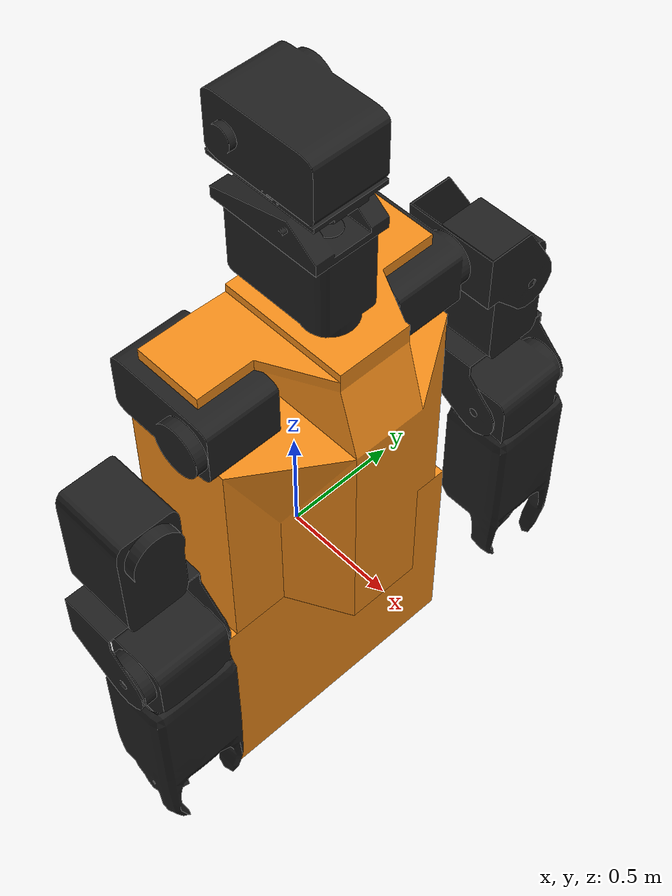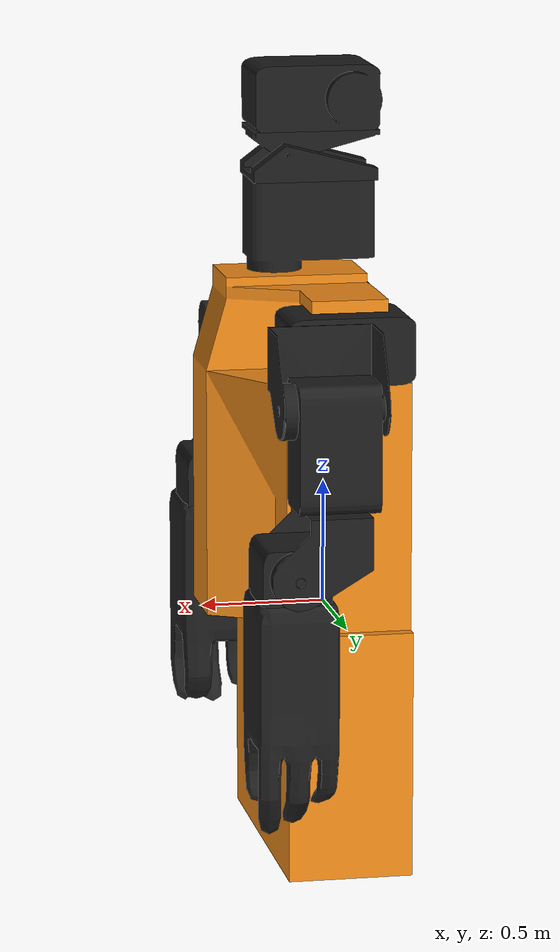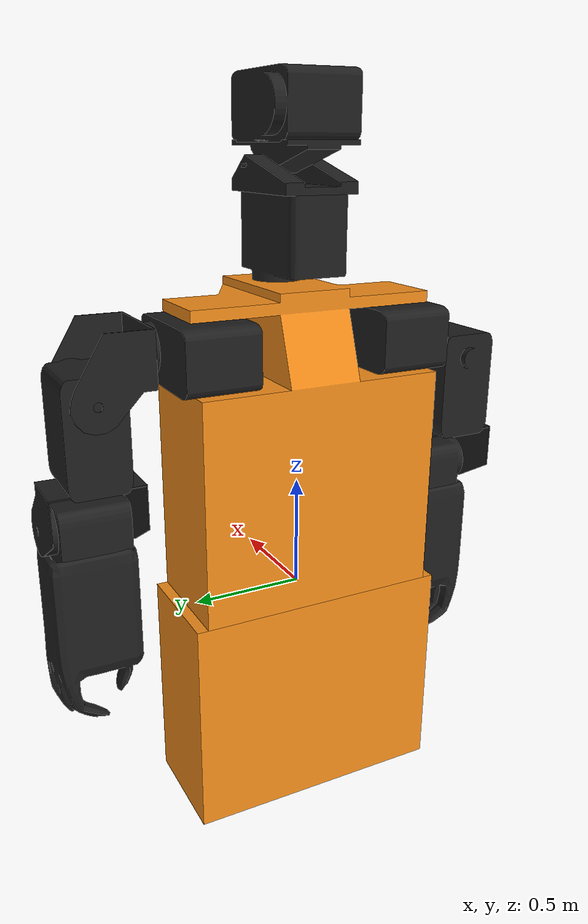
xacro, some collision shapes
<?xml version="1.0"?>
<robot name="timmy2" xmlns:xacro="http://www.ros.org/wiki/xacro">
    <xacro:property name="mass" value="0.2" />
    <xacro:property name="bracket_mass" value="0.01" />
    <xacro:property name="ax12_width" value="0.27" />
    <xacro:property name="ax12_height" value="0.5" />
    <xacro:property name="ax12_depth" value="0.4" />
    <xacro:property name="axeleft_offset" value="0.25" /> <!-- Space btw top of beam and the each joint -->
    <xacro:property name="width" value="0.1" /> <!-- Square dimensions (widthxwidth) of beams -->
    <xacro:property name="height1" value="2" /> <!-- Link 1 -->
    <xacro:property name="height2" value="1" /> <!-- Link 2 -->
    <xacro:property name="height3" value="1" /> <!-- Link 3 -->
    <xacro:property name="base_height" value="1.0" />
    <xacro:property name="package_name" value="timmy2_description" />
    <xacro:property name="mesh_dir" value="meshes2" />
    <xacro:property name="torso_origin">
        <origin xyz="0 0 ${base_height/2}" rpy="0 0 0"/>
    </xacro:property>
    <xacro:property name="link2_origin">
        <origin xyz="0 0 ${ax12_height/2 - axeleft_offset}" rpy="0 0 0"/>
    </xacro:property>
    <xacro:property name="link3_origin">
        <origin xyz="0 0 ${ax12_height/2 - axeleft_offset}" rpy="0 0 0"/>
    </xacro:property>
    <xacro:property name="base_box">
        <box size="0.5 1.2 ${base_height}"/>
    </xacro:property>
    <xacro:property name="base_origin">
        <origin xyz="0 0 -${base_height/2}" rpy="0 0 0"/>
    </xacro:property>
    <xacro:property name="ax12_block">
        <box size="${ax12_width} ${ax12_depth} ${ax12_height}"/>
    </xacro:property>
    <xacro:property name="ax12_block_collision">
        <box size="${ax12_width} ${ax12_depth} ${ax12_height}"/>
    </xacro:property>
    <xacro:property name="left_sho_pitch_block_origin">
        <origin xyz="0 0.45 0.14" rpy="0 0 0"/>
    </xacro:property>
    <xacro:property name="left_sho_pitch_block_collision_origin">
        <origin xyz="0 0.46 0.14" rpy="0 1.5708 0"/>
    </xacro:property>
    <xacro:property name="left_sho_pitch_joint_origin">
        <origin xyz="0.14 0.655 0.14" rpy="0 0 0"/>
    </xacro:property>
    <xacro:property name="left_sho_pitch_bracket_origin">
        <origin xyz="0 0.245 0" rpy="0 0 0"/>
    </xacro:property>
    <xacro:property name="left_sho_roll_joint_origin">
        <origin xyz="0 0.254 -0.161" rpy="0 0 0"/>
    </xacro:property>
    <xacro:property name="left_sho_roll_block_origin">
        <origin xyz="-0.01 0 -0.14" rpy="0 0 0"/>
    </xacro:property>
    <xacro:property name="left_sho_roll_block_collision_origin">
        <origin xyz="0 0 -0.14" rpy="0 0 1.5708"/>
    </xacro:property>
    <xacro:property name="left_elbow_bracket_joint_origin">
        <origin xyz="0 0 -0.22" rpy="0 0 0"/>
    </xacro:property>
    <xacro:property name="left_elbow_bracket_origin">
        <origin xyz="0 0 -0.4" rpy="0 0 0"/>
    </xacro:property>
    <xacro:property name="left_elbow_joint_origin">
        <origin xyz="0.1599 0 -0.4085" rpy="0 0 0"/>
    </xacro:property>
    <xacro:property name="left_elbow_block_origin">
        <origin xyz="0 -0.0168 -0.14" rpy="0 0 0"/>
    </xacro:property>
    <xacro:property name="left_hand_origin">
        <origin xyz="0 0 -0.4" rpy="0 0 0"/>
    </xacro:property>
    <xacro:property name="left_hand_collision_origin">
        <origin xyz="0 0 -0.55" rpy="0 0 0"/>
    </xacro:property>

    <!-- Right Arm -->
    <xacro:property name="right_sho_pitch_block_origin">
        <origin xyz="0 -0.44 0.14" rpy="0 0 0"/>
    </xacro:property>
    <xacro:property name="right_sho_pitch_block_collision_origin">
        <origin xyz="0 -0.45 0.14" rpy="0 1.5708 0"/>
    </xacro:property>
    <xacro:property name="right_sho_pitch_joint_origin">
        <origin xyz="0.14 -0.655 0.14" rpy="0 0 0"/>
    </xacro:property>
    <xacro:property name="right_sho_pitch_bracket_origin">
        <origin xyz="0 -0.245 0" rpy="0 0 0"/>
    </xacro:property>
    <xacro:property name="right_sho_roll_joint_origin">
        <origin xyz="0 -0.254 -0.161" rpy="0 0 0"/>
    </xacro:property>
    <xacro:property name="right_sho_roll_block_origin">
        <origin xyz="-0.01 0 -0.14" rpy="0 0 0"/>
    </xacro:property>
    <xacro:property name="right_sho_roll_block_collision_origin">
        <origin xyz="0 0 -0.14" rpy="0 0 1.5708"/>
    </xacro:property>
    <xacro:property name="right_elbow_bracket_joint_origin">
        <origin xyz="0 0 -0.22" rpy="0 0 0"/>
    </xacro:property>
    <xacro:property name="right_elbow_bracket_origin">
        <origin xyz="0 0 -0.4" rpy="0 0 0"/>
    </xacro:property>
    <xacro:property name="right_elbow_joint_origin">
        <origin xyz="0.1599 0 -0.4085" rpy="0 0 0"/>
    </xacro:property>
    <xacro:property name="right_elbow_block_origin">
        <origin xyz="0 0.0168 -0.14" rpy="0 0 0"/>
    </xacro:property>
    <xacro:property name="right_hand_origin">
        <origin xyz="0 0 -0.4" rpy="0 0 0"/>
    </xacro:property>
    <xacro:property name="right_hand_collision_origin">
        <origin xyz="0 0 -0.55" rpy="0 0 0"/>
    </xacro:property>

    <!-- Neck/Head -->
    <xacro:property name="neck_pan_joint_origin">
        <origin xyz="0.2 0 0.87" rpy="0 0 0"/>
    </xacro:property>
    <xacro:property name="neck_pan_block_origin">
        <origin xyz="-0.1385 0 0.218" rpy="0 0 0"/>
    </xacro:property>
    <xacro:property name="neck_pan_top_bracket_joint_origin">
        <origin xyz="-0.14 0 0.39" rpy="0 0 0"/>
    </xacro:property>
    <xacro:property name="neck_pan_top_bracket_origin">
        <origin xyz="0 0 0" rpy="0 0 0"/>
    </xacro:property>
    <xacro:property name="neck_tilt_bottom_bracket_joint_origin">
        <origin xyz="0.113 0 0.09" rpy="0 0 0"/>
    </xacro:property>
    <xacro:property name="neck_tilt_bottom_bracket_origin">
        <origin xyz="-0.12 0 0.06" rpy="0 0 0"/>
    </xacro:property>
    <xacro:property name="head_tilt_bracket_joint_origin">
        <origin xyz="0 0 0" rpy="0 0 0"/>
    </xacro:property>
    <xacro:property name="head_tilt_block_origin">
        <origin xyz="-0.12 0 0.222" rpy="0 0 0"/>
    </xacro:property>

    <xacro:property name="bracket_collision_block">
        <box size="0.0001 0.0001 0.0001"/>
    </xacro:property>

    <xacro:property name="ax12_block_inertia">
        <inertia
            ixx="${mass/12.0*(ax12_width*ax12_width + ax12_height*ax12_height)}" ixy="0.0" ixz="0.0"
            iyy="${mass/12.0*(ax12_width*ax12_width + ax12_height*ax12_height)}" iyz="0.0"
            izz="${mass/12.0*(ax12_width*ax12_width + ax12_width*ax12_width)}"/>
    </xacro:property>

    <!-- Import Gazebo-customization stuff -->
    <xacro:include filename="$(find timmy2_description)/urdf/timmy2.gazebo" />

    <link name="world" />
    <joint name="base_fixed" type="fixed">
        <parent link="world"/>
        <child link="base"/>
    </joint>

    <link name="base">
        <collision>
            <xacro:insert_block name="base_origin"/>
            <geometry>
                <xacro:insert_block name="base_box"/>
            </geometry>
        </collision>
        <visual>
            <xacro:insert_block name="base_origin"/>
            <geometry>
                <xacro:insert_block name="base_box"/>
            </geometry>
            <material name="orange"/>
        </visual>
        <inertial>
            <xacro:insert_block name="base_origin"/>
            <mass value="${mass*2}"/>
            <inertia
                ixx="1.0" ixy="0.0" ixz="0.0"
                iyy="1.0" iyz="0.0"
                izz="1.0"/>
        </inertial>
    </link>

    <joint name="torso_fixed" type="fixed">
        <parent link="base"/>
        <child link="torso"/>
        <origin xyz="0 0 ${base_height/2}" rpy="0 0 0"/>
    </joint>

    <!-- Base Link (Torso) -->
    <link name="torso">
        <collision>
            <origin xyz="0.13 0 -0.3" rpy="0 0 0" />
            <geometry>
                <box size="0.77 1.2 2.4"/>
            </geometry>
        </collision>
        <visual>
            <xacro:insert_block name="torso_origin"/>
            <geometry>
                <mesh filename="package://${package_name}/${mesh_dir}/torso.dae"/>
            </geometry>
            <material name="orange"/>
        </visual>
        <inertial>
            <xacro:insert_block name="torso_origin"/>
            <mass value="${mass}"/>
            <xacro:insert_block name="ax12_block_inertia"/>
        </inertial>
    </link>

    <!-- end of Base Link -->
    <joint name="left_sho_block_mount" type="fixed">
        <parent link="torso"/>
        <child link="left_sho_pitch_block"/>
        <origin xyz="0 0 ${base_height/2}" rpy="0 0 0" />
    </joint>

    <!-- Middle Link -->
    <link name="left_sho_pitch_block">
        <collision>
            <xacro:insert_block name="left_sho_pitch_block_collision_origin"/>
            <geometry>
                <xacro:insert_block name="ax12_block"/>
            </geometry>
        </collision>
        <visual>
            <xacro:insert_block name="left_sho_pitch_block_origin"/>
            <geometry>
                <mesh filename="package://${package_name}/${mesh_dir}/left_sho_pitch.dae"/>
            </geometry>
            <material name="black"/>
        </visual>
        <inertial>
            <xacro:insert_block name="left_sho_pitch_block_origin"/>
            <mass value="${mass}"/>
            <xacro:insert_block name="ax12_block_inertia"/>
        </inertial>
    </link>

    <joint name="left_sho_pitch" type="continuous">
        <parent link="left_sho_pitch_block"/>
        <child link="left_sho_pitch_bracket"/>
        <origin xyz="0.14 0.65 0.14" rpy="0 0 0"/>
        <axis xyz="0 1 0"/>
        <dynamics damping="0.7"/>
    </joint>

    <!-- Left shoulder bracket -->
    <link name="left_sho_pitch_bracket">
        <collision>
            <xacro:insert_block name="left_sho_pitch_bracket_origin"/>
            <geometry>
                <xacro:insert_block name="bracket_collision_block"/>
            </geometry>
        </collision>
        <visual>
            <xacro:insert_block name="left_sho_pitch_bracket_origin"/>
            <geometry>
                <mesh filename="package://${package_name}/${mesh_dir}/left_sho_pitch_bracket.dae"/>
            </geometry>
            <material name="black"/>
        </visual>
        <inertial>
            <xacro:insert_block name="left_sho_pitch_bracket_origin"/>
            <mass value="${bracket_mass}"/>
            <xacro:insert_block name="ax12_block_inertia"/>
        </inertial>
    </link>

    <joint name="left_sho_roll" type="continuous">
        <parent link="left_sho_pitch_bracket"/>
        <child link="left_sho_roll_block"/>
        <xacro:insert_block name="left_sho_roll_joint_origin"/>
        <axis xyz="1 0 0"/>
        <dynamics damping="0.7"/>
    </joint>

    <!-- Middle Link -->
    <link name="left_sho_roll_block">
        <collision>
            <xacro:insert_block name="left_sho_roll_block_collision_origin"/>
            <geometry>
                <xacro:insert_block name="ax12_block"/>
            </geometry>
        </collision>
        <visual>
            <xacro:insert_block name="left_sho_roll_block_origin"/>
            <geometry>
                <mesh filename="package://${package_name}/${mesh_dir}/left_sho_roll.dae"/>
            </geometry>
            <material name="black"/>
        </visual>
        <inertial>
            <xacro:insert_block name="left_sho_roll_block_origin"/>
            <mass value="${mass}"/>
            <xacro:insert_block name="ax12_block_inertia"/>
        </inertial>
    </link>

    <joint name="left_elbow_bracket_joint" type="fixed">
        <parent link="left_sho_roll_block"/>
        <child link="left_elbow_bracket"/>
        <xacro:insert_block name="left_elbow_bracket_joint_origin"/>
    </joint>

    <!-- Left Elbow -->
    <link name="left_elbow_bracket">
        <collision>
            <xacro:insert_block name="left_elbow_bracket_origin"/>
            <geometry>
                <xacro:insert_block name="bracket_collision_block"/>
            </geometry>
        </collision>
        <visual>
            <xacro:insert_block name="left_elbow_bracket_origin"/>
            <geometry>
                <mesh filename="package://${package_name}/${mesh_dir}/left_elbow_bracket.dae"/>
            </geometry>
            <material name="black"/>
        </visual>
        <inertial>
            <xacro:insert_block name="left_elbow_bracket_origin"/>
            <mass value="${bracket_mass}"/>
            <xacro:insert_block name="ax12_block_inertia"/>
        </inertial>
    </link>

    <joint name="left_elbow" type="continuous">
        <parent link="left_elbow_bracket"/>
        <child link="left_elbow_block"/>
        <xacro:insert_block name="left_elbow_joint_origin"/>
        <axis xyz="0 -1 0"/>
        <dynamics damping="0.7"/>
    </joint>

    <link name="left_elbow_block">
        <collision>
            <xacro:insert_block name="left_elbow_block_origin"/>
            <geometry>
                <xacro:insert_block name="ax12_block"/>
            </geometry>
        </collision>
        <visual>
            <xacro:insert_block name="left_elbow_block_origin"/>
            <geometry>
                <mesh filename="package://${package_name}/${mesh_dir}/left_elbow_pitch.dae"/>
            </geometry>
            <material name="black"/>
        </visual>
        <inertial>
            <xacro:insert_block name="left_elbow_block_origin"/>
            <mass value="${mass}"/>
            <xacro:insert_block name="ax12_block_inertia"/>
        </inertial>
    </link>

    <joint name="left_hand_joint" type="fixed">
        <parent link="left_elbow_block"/>
        <child link="left_hand"/>
    </joint>

    <link name="left_hand">
        <collision>
            <xacro:insert_block name="left_hand_collision_origin"/>
            <geometry>
                <box size="0.4 0.4 0.95" />
            </geometry>
        </collision>
        <visual>
            <xacro:insert_block name="left_hand_origin"/>
            <geometry>
                <mesh filename="package://${package_name}/${mesh_dir}/left_hand.dae"/>
            </geometry>
            <material name="black"/>
        </visual>
        <inertial>
            <xacro:insert_block name="left_hand_origin"/>
            <mass value="${mass}"/>
            <xacro:insert_block name="ax12_block_inertia"/>
        </inertial>
    </link>

    <!-- end of Base Link -->
    <joint name="right_sho_block_mount" type="fixed">
        <parent link="torso"/>
        <child link="right_sho_pitch_block"/>
        <origin xyz="0 0 ${base_height/2}" rpy="0 0 0" />
    </joint>

    <!-- Middle Link -->
    <link name="right_sho_pitch_block">
        <collision>
            <xacro:insert_block name="right_sho_pitch_block_collision_origin"/>
            <geometry>
                <xacro:insert_block name="ax12_block"/>
            </geometry>
        </collision>
        <visual>
            <xacro:insert_block name="right_sho_pitch_block_origin"/>
            <geometry>
                <mesh filename="package://${package_name}/${mesh_dir}/right_sho_pitch.dae"/>
            </geometry>
            <material name="black"/>
        </visual>
        <inertial>
            <xacro:insert_block name="right_sho_pitch_block_origin"/>
            <mass value="${mass}"/>
            <xacro:insert_block name="ax12_block_inertia"/>
        </inertial>
    </link>

    <joint name="right_sho_pitch" type="continuous">
        <parent link="right_sho_pitch_block"/>
        <child link="right_sho_pitch_bracket"/>
        <origin xyz="0.14 -0.65 0.14" rpy="0 0 0"/>
        <axis xyz="0 -1 0"/>
        <dynamics damping="0.7"/>
    </joint>

    <!-- right shoulder bracket -->
    <link name="right_sho_pitch_bracket">
        <collision>
            <xacro:insert_block name="right_sho_pitch_bracket_origin"/>
            <geometry>
                <xacro:insert_block name="bracket_collision_block"/>
            </geometry>
        </collision>
        <visual>
            <xacro:insert_block name="right_sho_pitch_bracket_origin"/>
            <geometry>
                <mesh filename="package://${package_name}/${mesh_dir}/right_sho_pitch_bracket.dae"/>
            </geometry>
            <material name="black"/>
        </visual>
        <inertial>
            <xacro:insert_block name="right_sho_pitch_bracket_origin"/>
            <mass value="${bracket_mass}"/>
            <xacro:insert_block name="ax12_block_inertia"/>
        </inertial>
    </link>

    <joint name="right_sho_roll" type="continuous">
        <parent link="right_sho_pitch_bracket"/>
        <child link="right_sho_roll_block"/>
        <xacro:insert_block name="right_sho_roll_joint_origin"/>
        <axis xyz="1 0 0"/>
        <dynamics damping="0.7"/>
    </joint>

    <!-- Middle Link -->
    <link name="right_sho_roll_block">
        <collision>
            <xacro:insert_block name="right_sho_roll_block_collision_origin"/>
            <geometry>
                <xacro:insert_block name="ax12_block"/>
            </geometry>
        </collision>
        <visual>
            <xacro:insert_block name="right_sho_roll_block_origin"/>
            <geometry>
                <mesh filename="package://${package_name}/${mesh_dir}/right_sho_roll.dae"/>
            </geometry>
            <material name="black"/>
        </visual>
        <inertial>
            <xacro:insert_block name="right_sho_roll_block_origin"/>
            <mass value="${mass}"/>
            <xacro:insert_block name="ax12_block_inertia"/>
        </inertial>
    </link>

    <joint name="right_elbow_bracket_joint" type="fixed">
        <parent link="right_sho_roll_block"/>
        <child link="right_elbow_bracket"/>
        <xacro:insert_block name="right_elbow_bracket_joint_origin"/>
    </joint>

    <!-- right Elbow -->
    <link name="right_elbow_bracket">
        <collision>
            <xacro:insert_block name="right_elbow_bracket_origin"/>
            <geometry>
                <xacro:insert_block name="bracket_collision_block"/>
            </geometry>
        </collision>
        <visual>
            <xacro:insert_block name="right_elbow_bracket_origin"/>
            <geometry>
                <mesh filename="package://${package_name}/${mesh_dir}/right_elbow_bracket.dae"/>
            </geometry>
            <material name="black"/>
        </visual>
        <inertial>
            <xacro:insert_block name="right_elbow_bracket_origin"/>
            <mass value="${bracket_mass}"/>
            <xacro:insert_block name="ax12_block_inertia"/>
        </inertial>
    </link>
    <!-- end of Base Link -->

    <joint name="right_elbow" type="continuous">
        <parent link="right_elbow_bracket"/>
        <child link="right_elbow_block"/>
        <xacro:insert_block name="right_elbow_joint_origin"/>
        <axis xyz="0 -1 0"/>
        <dynamics damping="0.7"/>
    </joint>

    <link name="right_elbow_block">
        <collision>
            <xacro:insert_block name="right_elbow_block_origin"/>
            <geometry>
                <xacro:insert_block name="ax12_block"/>
            </geometry>
        </collision>
        <visual>
            <xacro:insert_block name="right_elbow_block_origin"/>
            <geometry>
                <mesh filename="package://${package_name}/${mesh_dir}/right_elbow_pitch_fn.dae"/>
            </geometry>
            <material name="black"/>
        </visual>
        <inertial>
            <xacro:insert_block name="right_elbow_block_origin"/>
            <mass value="${mass}"/>
            <xacro:insert_block name="ax12_block_inertia"/>
        </inertial>
    </link>

    <joint name="right_hand_joint" type="fixed">
        <parent link="right_elbow_block"/>
        <child link="right_hand"/>
    </joint>

    <link name="right_hand">
        <collision>
            <xacro:insert_block name="right_hand_collision_origin"/>
            <geometry>
                <box size="0.4 0.4 0.95" />
            </geometry>
        </collision>
        <visual>
            <xacro:insert_block name="right_hand_origin"/>
            <geometry>
                <mesh filename="package://${package_name}/${mesh_dir}/right_hand2.dae"/>
            </geometry>
            <material name="black"/>
        </visual>
        <inertial>
            <xacro:insert_block name="right_hand_origin"/>
            <mass value="${mass}"/>
            <xacro:insert_block name="ax12_block_inertia"/>
        </inertial>
    </link>
    <!-- end of Top Link -->

    <joint name="neck_pan" type="revolute">
        <parent link="torso"/>
        <child link="neck_pan_block"/>
        <xacro:insert_block name="neck_pan_joint_origin"/>
        <axis xyz="0 0 1"/>
        <dynamics damping="0.7"/>
        <limit lower="-1.6807" upper="1.6807" effort="0.5" velocity="0.7"/>
    </joint>

    <link name="neck_pan_block">
        <collision>
            <origin xyz="-0.1385 0 0.218" rpy="1.5708 0 1.5708"/>
            <geometry>
                <xacro:insert_block name="ax12_block"/>
            </geometry>
        </collision>
        <visual>
            <xacro:insert_block name="neck_pan_block_origin"/>
            <geometry>
                <mesh filename="package://${package_name}/${mesh_dir}/neck_base.dae"/>
            </geometry>
            <material name="black"/>
        </visual>
        <inertial>
            <xacro:insert_block name="neck_pan_block_origin"/>
            <mass value="${mass}"/>
            <xacro:insert_block name="ax12_block_inertia"/>
        </inertial>
    </link>

    <joint name="neck_pan_top_bracket_joint" type="fixed">
        <parent link="neck_pan_block" />
        <child link="neck_pan_top_bracket" />
        <xacro:insert_block name="neck_pan_top_bracket_joint_origin" />
    </joint>

    <link name="neck_pan_top_bracket">
        <collision>
            <origin xyz="0 0 0.0168" rpy="0 0 0" />
            <geometry>
                <box size="${ax12_height} ${ax12_depth} 0.058" />
            </geometry>
        </collision>
        <visual>
            <xacro:insert_block name="neck_pan_top_bracket_origin"/>
            <geometry>
                <mesh filename="package://${package_name}/${mesh_dir}/neck_bottom.dae"/>
            </geometry>
            <material name="black"/>
        </visual>
        <inertial>
            <xacro:insert_block name="neck_pan_top_bracket_origin"/>
            <mass value="${mass}"/>
            <xacro:insert_block name="ax12_block_inertia"/>
        </inertial>
    </link>

    <joint name="neck_tilt" type="revolute">
        <parent link="neck_pan_top_bracket" />
        <child link="neck_tilt_bottom_bracket" />
        <xacro:insert_block name="neck_tilt_bottom_bracket_joint_origin"/>
        <axis xyz="0 1 0"/>
        <dynamics damping="0.2"/>
        <limit lower="-0.2807" upper="0.5807" effort="0.5" velocity="0.7"/>
    </joint>

    <link name="neck_tilt_bottom_bracket">
        <collision>
            <origin xyz="-0.12 0 0.07" rpy="0 0 0" />
            <geometry>
                <box size="${ax12_height} ${ax12_depth} 0.05" />
            </geometry>
        </collision>
        <visual>
            <xacro:insert_block name="neck_tilt_bottom_bracket_origin"/>
            <geometry>
                <mesh filename="package://${package_name}/${mesh_dir}/head_top_bracket.dae"/>
            </geometry>
            <material name="black"/>
        </visual>
        <inertial>
            <xacro:insert_block name="neck_tilt_bottom_bracket_origin"/>
            <mass value="${mass}"/>
            <xacro:insert_block name="ax12_block_inertia"/>
        </inertial>
    </link>

    <joint name="head_tilt_bracket_joint" type="fixed">
        <parent link="neck_tilt_bottom_bracket" />
        <child link="head_tilt_block" />
        <xacro:insert_block name="head_tilt_bracket_joint_origin" />
    </joint>

    <link name="head_tilt_block">
        <collision>
            <origin xyz="-0.12 0 0.222" rpy="1.5708 1.5708 1.5708"/>
            <geometry>
                <xacro:insert_block name="ax12_block"/>
            </geometry>
        </collision>
        <visual>
            <xacro:insert_block name="head_tilt_block_origin"/>
            <geometry>
                <mesh filename="package://${package_name}/${mesh_dir}/head_tilt.dae"/>
            </geometry>
            <material name="black"/>
        </visual>
        <inertial>
            <xacro:insert_block name="head_tilt_block_origin"/>
            <mass value="${mass}"/>
            <xacro:insert_block name="ax12_block_inertia"/>
        </inertial>
    </link>

    <!-- Transmissions -->
    <transmission name="right_sho_pitch_tran">
        <type>transmission_interface/SimpleTransmission</type>
        <joint name="right_sho_pitch">
            <hardwareInterface>hardware_interface/EffortJointInterface</hardwareInterface>
        </joint>
        <actuator name="motor1">
            <hardwareInterface>hardware_interface/EffortJointInterface</hardwareInterface>
            <mechanicalReduction>1</mechanicalReduction>
        </actuator>
    </transmission>

    <transmission name="left_sho_roll_tran">
        <type>transmission_interface/SimpleTransmission</type>
        <joint name="left_sho_roll">
            <hardwareInterface>hardware_interface/EffortJointInterface</hardwareInterface>
        </joint>
        <actuator name="motor2">
            <hardwareInterface>hardware_interface/EffortJointInterface</hardwareInterface>
            <mechanicalReduction>1</mechanicalReduction>
        </actuator>
    </transmission>

    <transmission name="left_sho_pitch_tran">
        <type>transmission_interface/SimpleTransmission</type>
        <joint name="left_sho_pitch">
            <hardwareInterface>hardware_interface/EffortJointInterface</hardwareInterface>
        </joint>
        <actuator name="motor3">
            <hardwareInterface>hardware_interface/EffortJointInterface</hardwareInterface>
            <mechanicalReduction>1</mechanicalReduction>
        </actuator>
    </transmission>

    <transmission name="right_sho_roll_tran">
        <type>transmission_interface/SimpleTransmission</type>
        <joint name="right_sho_roll">
            <hardwareInterface>hardware_interface/EffortJointInterface</hardwareInterface>
        </joint>
        <actuator name="motor4">
            <hardwareInterface>hardware_interface/EffortJointInterface</hardwareInterface>
            <mechanicalReduction>1</mechanicalReduction>
        </actuator>
    </transmission>

    <transmission name="left_elbow_tran">
        <type>transmission_interface/SimpleTransmission</type>
        <joint name="left_elbow">
            <hardwareInterface>hardware_interface/EffortJointInterface</hardwareInterface>
        </joint>
        <actuator name="motor5">
            <hardwareInterface>hardware_interface/EffortJointInterface</hardwareInterface>
            <mechanicalReduction>1</mechanicalReduction>
        </actuator>
    </transmission>

    <transmission name="right_elbow_tran">
        <type>transmission_interface/SimpleTransmission</type>
        <joint name="right_elbow">
            <hardwareInterface>hardware_interface/EffortJointInterface</hardwareInterface>
        </joint>
        <actuator name="motor6">
            <hardwareInterface>hardware_interface/EffortJointInterface</hardwareInterface>
            <mechanicalReduction>1</mechanicalReduction>
        </actuator>
    </transmission>

    <transmission name="neck_pan_tran">
        <type>transmission_interface/SimpleTransmission</type>
        <joint name="neck_pan">
            <hardwareInterface>hardware_interface/EffortJointInterface</hardwareInterface>
        </joint>
        <actuator name="motor7">
            <hardwareInterface>hardware_interface/EffortJointInterface</hardwareInterface>
            <mechanicalReduction>1</mechanicalReduction>
        </actuator>
    </transmission>
    <transmission name="neck_tilt_tran">
        <type>transmission_interface/SimpleTransmission</type>
        <joint name="neck_tilt">
            <hardwareInterface>hardware_interface/EffortJointInterface</hardwareInterface>
        </joint>
        <actuator name="motor8">
            <hardwareInterface>hardware_interface/EffortJointInterface</hardwareInterface>
            <mechanicalReduction>1</mechanicalReduction>
        </actuator>
    </transmission>

    <!-- Connect Gazebo to ROS -->
    <gazebo>
        <plugin name="gazebo_ros_control" filename="libgazebo_ros_control.so">
            <robotNamespace>/timmy2</robotNamespace><!-- important - namespace mustbe correct -->
        </plugin>
    </gazebo>
    <!-- see test.gazebo -->
</robot>
